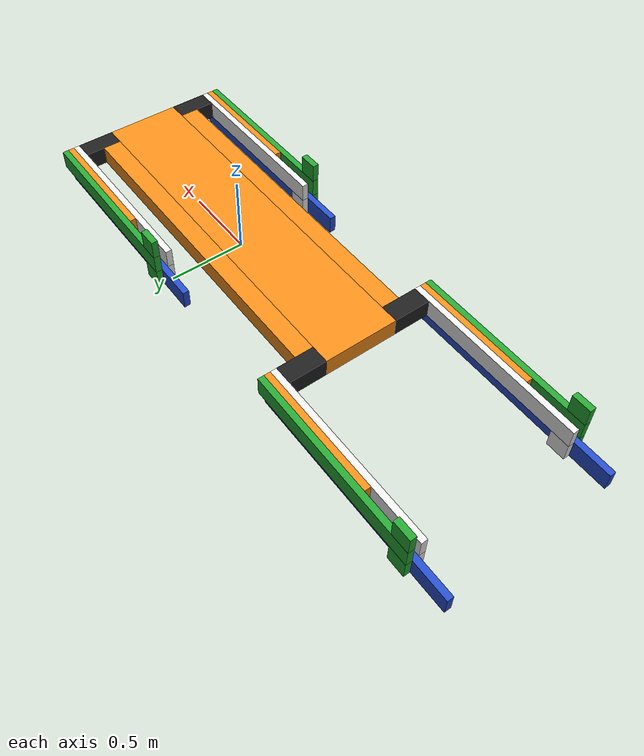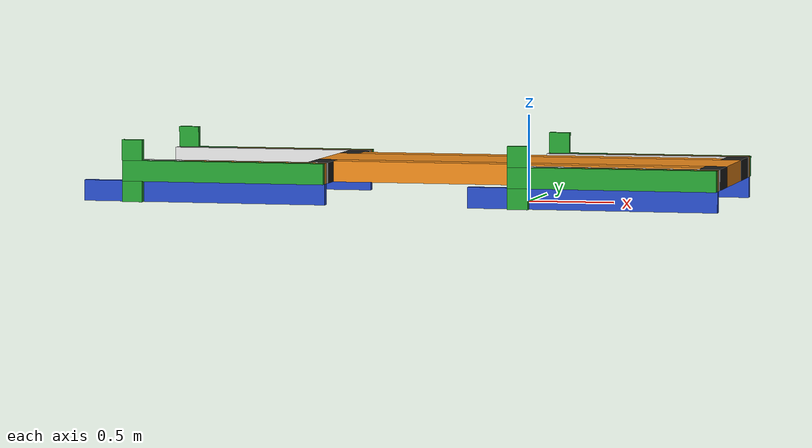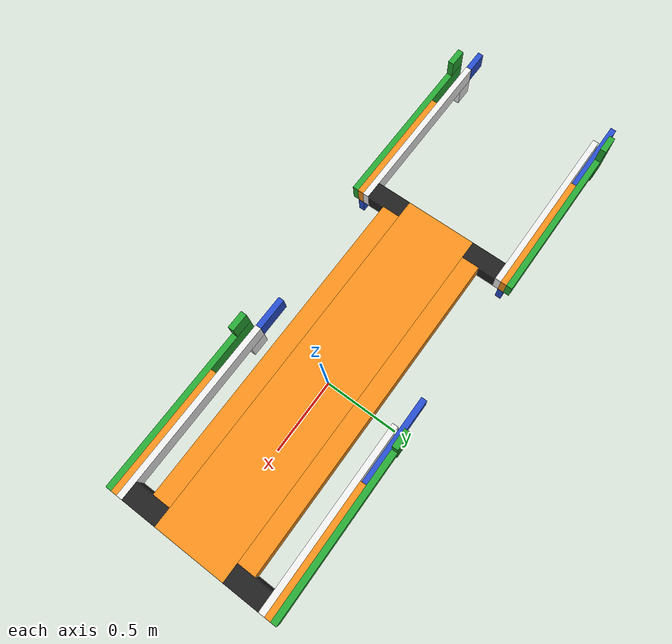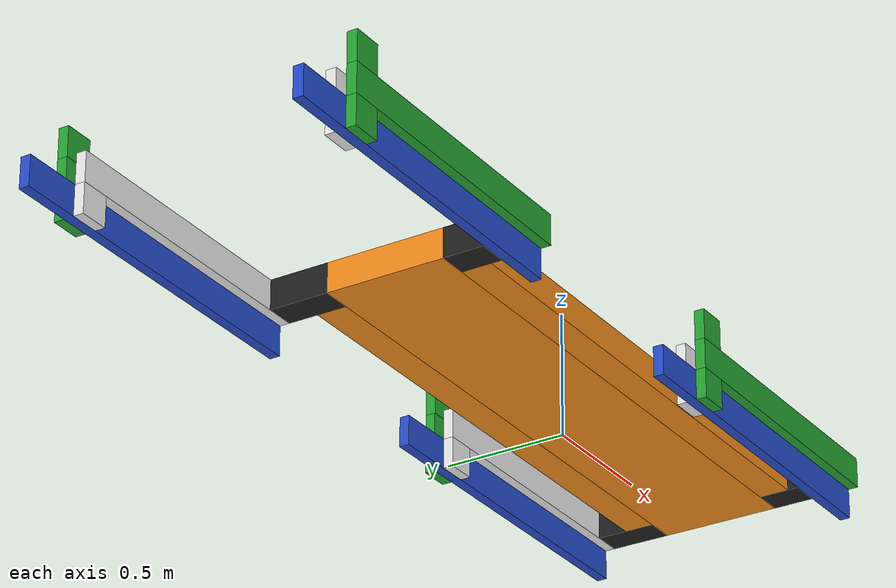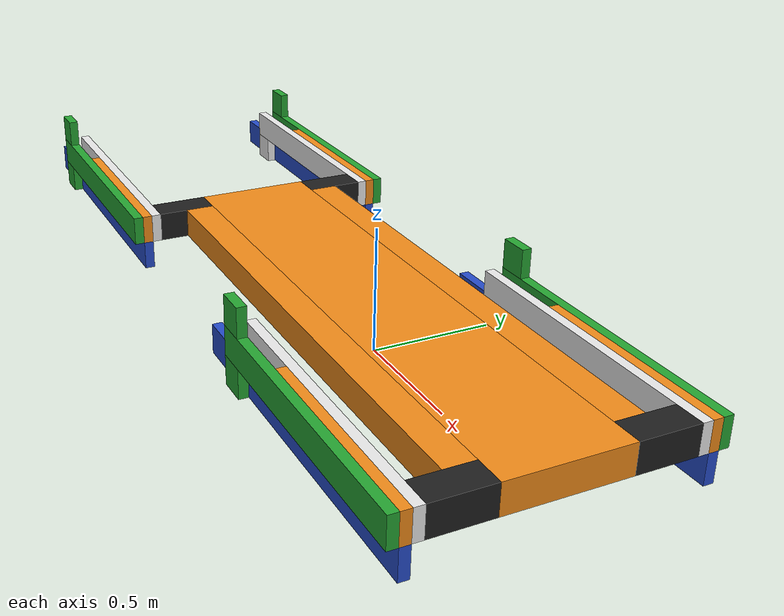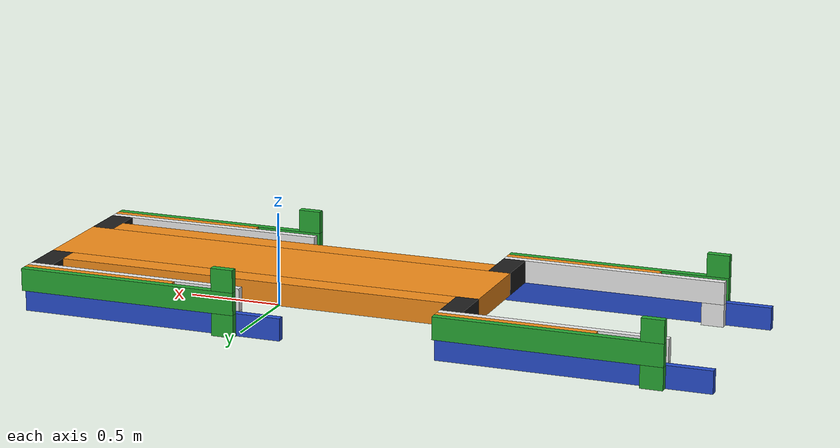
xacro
<?xml version="1.0"?>
<!--
THESE COMMANDS AUTO-GENERATE THE NECESSARY *.urdf / *.xml
rosrun xacro xacro -o my_spot.urdf my_spot.xacro
rosrun xacro xacro -o my_spot.xml my_spot.xacro
-->
<!-- Revolute-Revolute Manipulator -->
<robot name="my_spot" xmlns:xacro="http://www.ros.org/wiki/xacro">

  <!-- Import all Gazebo-customization elements, including Gazebo colors -->
  <xacro:include filename="$(find my_spot)/urdf/my_spot.gazebo" />
  <!-- Import Rviz colors -->
  <xacro:include filename="$(find my_spot)/urdf/materials.xacro" />
  <!-- Import constants -->
  <xacro:include filename="$(find my_spot)/urdf/property_variables.xacro" />
  <!-- Import leg macro -->
  <xacro:include filename="$(find my_spot)/urdf/leg.xacro" />

  <!-- Used for fixing robot to Gazebo 'base_link' -->
  <link name="world"/>

 <joint name="float_torso" type="floating">
    <parent link="world"/>
    <child link="link_torso"/>
    <origin xyz="0 0 ${z_width_lowerarm_left}" rpy="0 0 0"/>
    <calibration rising="0.0"/>
    <dynamics damping="0.0" friction="0.0"/>
    <safety_controller k_velocity="10" k_position="15" soft_lower_limit="-2.0" soft_upper_limit="0.5" />
  </joint>

  <!-- Base Link -->
  <link name="link_torso">
    <collision>
      <origin xyz="0 0 ${z_width_body/2}" rpy="0 0 0"/>
      <geometry>
	<box size="${x_width_body} ${y_width_body} ${z_width_body}"/>
      </geometry>
    </collision>

    <visual>
      <origin xyz="0 0 ${z_width_body/2}" rpy="0 0 0"/>
      <geometry>
	<box size="${x_width_body} ${y_width_body} ${z_width_body}"/>
      </geometry>
      <material name="orange"/>
    </visual>

    <inertial>
      <origin xyz="0 0 ${z_width_body/2}" rpy="0 0 0"/>
      <mass value="${mass}"/>
      <inertia
	  ixx="${mass / 12.0 * (y_width_body*y_width_body + z_width_body*z_width_body)}" ixy="0.0" ixz="0.0"
	  iyy="${mass / 12.0 * (z_width_body*z_width_body + x_width_body*x_width_body)}" iyz="0.0"
	  izz="${mass / 12.0 * (x_width_body*x_width_body + y_width_body*y_width_body)}"/>
    </inertial>
  </link>
  <link name="left_latissimus_dorsi">
    <collision>
      <origin xyz="0 0 0" rpy="0 0 0"/>
      <geometry>
	<box size="${x_width_body- z_width_body*2} ${z_width_body} ${z_width_body}"/>
      </geometry>
    </collision>

    <visual>
      <origin xyz="0 0 0" rpy="0 0 0"/>
      <geometry>
	<box size="${x_width_body- z_width_body*2} ${z_width_body} ${z_width_body}"/>
      </geometry>
      <material name="orange"/>
    </visual>

    <inertial>
      <origin xyz="0 0 0" rpy="0 0 0"/>
      <mass value="${mass}"/>
      <inertia
	  ixx="${mass / 12.0 * (y_width_body*y_width_body + z_width_body*z_width_body)}" ixy="0.0" ixz="0.0"
	  iyy="${mass / 12.0 * (z_width_body*z_width_body + x_width_body*x_width_body)}" iyz="0.0"
	  izz="${mass / 12.0 * (x_width_body*x_width_body + y_width_body*y_width_body)}"/>
    </inertial>
  </link>
  <link name="right_latissimus_dorsi">
    <collision>
      <origin xyz="0 0 0" rpy="0 0 0"/>
      <geometry>
	<box size="${x_width_body- z_width_body*2} ${z_width_body} ${z_width_body}"/>
      </geometry>
    </collision>

    <visual>
      <origin xyz="0 0 0" rpy="0 0 0"/>
      <geometry>
	<box size="${x_width_body- z_width_body*2} ${z_width_body} ${z_width_body}"/>
      </geometry>
      <material name="orange"/>
    </visual>

    <inertial>
      <origin xyz="0 0 0" rpy="0 0 0"/>
      <mass value="${mass}"/>
      <inertia
	  ixx="${mass / 12.0 * (y_width_body*y_width_body + z_width_body*z_width_body)}" ixy="0.0" ixz="0.0"
	  iyy="${mass / 12.0 * (z_width_body*z_width_body + x_width_body*x_width_body)}" iyz="0.0"
	  izz="${mass / 12.0 * (x_width_body*x_width_body + y_width_body*y_width_body)}"/>
    </inertial>
  </link>
  <joint name="joint_left_latissimus_dorsi" type="fixed">
    <parent link="link_torso"/>
    <child link="left_latissimus_dorsi"/>
    <origin xyz="0 ${ y_width_body/2 + axel_offset} ${ z_width_body - axel_offset }" rpy="0 0 0"/>
    <axis xyz="1 0 0"/>   <!-- ___________________________________AXIS -->
  </joint>
  <joint name="joint_right_latissimus_dorsi" type="fixed">
    <parent link="link_torso"/>
    <child link="right_latissimus_dorsi"/>
    <origin xyz="0 ${ -y_width_body/2 - axel_offset} ${ z_width_body - axel_offset }" rpy="0 0 0"/>
    <axis xyz="1 0 0"/>   <!-- ___________________________________AXIS -->
  </joint>

  <xacro:leg NAME_limb="left_front"  s_to_t_originX="${(x_width_body/2 - axel_offset)}"
		               s_to_t_originY="${(y_width_body/2 + axel_offset)}"
                               s_to_t_originZ="${(z_width_body - axel_offset)}"
			                flipX="1"
			                flipY="1"
			                flipZ="1"
PI="${PI}" mass="${mass}" width="${width}" x_width_body="${x_width_body}" y_width_body="${y_width_body}" z_width_body="${z_width_body}"
x_width_shoulder_left="${x_width_shoulder_left}" y_width_shoulder_left="${y_width_shoulder_left}" z_width_shoulder_left="${z_width_shoulder_left}" shoulder_roll="0" shoulder_pitch="0" shoulder_yaw="0"
x_width_upperarm_left="${x_width_upperarm_left}" y_width_upperarm_left="${y_width_upperarm_left}" z_width_upperarm_left="${z_width_upperarm_left}" upperarm_roll="0" upperarm_pitch="0" upperarm_yaw="0"
x_width_lowerarm_left="${x_width_lowerarm_left}" y_width_lowerarm_left="${y_width_lowerarm_left}" z_width_lowerarm_left="${z_width_lowerarm_left}" lowerarm_roll="0" lowerarm_pitch="0" lowerarm_yaw="0"
height1="${height1}" height2="${height2}" height3="${height3}" camera_link="${camera_link}" axel_offset="${axel_offset}" axel_offset_small="${axel_offset_small}"/>

  <xacro:leg NAME_limb="left_rear" s_to_t_originX="${REFLECT*(x_width_body/2 - axel_offset)}"
		             s_to_t_originY="${(y_width_body/2 + axel_offset)}"
                             s_to_t_originZ="${(z_width_body - axel_offset)}"
			                flipX=" 1"
			                flipY=" 1"
			                flipZ=" 1"
PI="${PI}" mass="${mass}" width="${width}" x_width_body="${x_width_body}" y_width_body="${y_width_body}" z_width_body="${z_width_body}"
x_width_shoulder_left="${x_width_shoulder_left}" y_width_shoulder_left="${y_width_shoulder_left}" z_width_shoulder_left="${z_width_shoulder_left}" shoulder_roll="0" shoulder_pitch="0" shoulder_yaw="0"
x_width_upperarm_left="${x_width_upperarm_left}" y_width_upperarm_left="${y_width_upperarm_left}" z_width_upperarm_left="${z_width_upperarm_left}" upperarm_roll="0" upperarm_pitch="0" upperarm_yaw="0"
x_width_lowerarm_left="${x_width_lowerarm_left}" y_width_lowerarm_left="${y_width_lowerarm_left}" z_width_lowerarm_left="${z_width_lowerarm_left}" lowerarm_roll="0" lowerarm_pitch="0" lowerarm_yaw="0"
height1="${height1}" height2="${height2}" height3="${height3}" camera_link="${camera_link}" axel_offset="${axel_offset}" axel_offset_small="${axel_offset_small}"/>

  <xacro:leg NAME_limb="right_front" s_to_t_originX="${(x_width_body/2 - axel_offset)}"
		               s_to_t_originY="${-1*(y_width_body/2 + axel_offset)}"
                               s_to_t_originZ="${(z_width_body - axel_offset)}"
			                flipX=" 1"
			                flipY=" 1"
			                flipZ="-1"
PI="${PI}" mass="${mass}" width="${width}" x_width_body="${x_width_body}" y_width_body="${y_width_body}" z_width_body="${z_width_body}"
x_width_shoulder_left="${x_width_shoulder_left}" y_width_shoulder_left="${y_width_shoulder_left}" z_width_shoulder_left="${z_width_shoulder_left}" shoulder_roll="${PI}" shoulder_pitch="0" shoulder_yaw="0"
x_width_upperarm_left="${x_width_upperarm_left}" y_width_upperarm_left="${y_width_upperarm_left}" z_width_upperarm_left="${z_width_upperarm_left}" upperarm_roll="0" upperarm_pitch="0" upperarm_yaw="0"
x_width_lowerarm_left="${x_width_lowerarm_left}" y_width_lowerarm_left="${y_width_lowerarm_left}" z_width_lowerarm_left="${z_width_lowerarm_left}" lowerarm_roll="0" lowerarm_pitch="0" lowerarm_yaw="0"
height1="${height1}" height2="${height2}" height3="${height3}" camera_link="${camera_link}" axel_offset="${axel_offset}" axel_offset_small="${axel_offset_small}"/>

  <xacro:leg NAME_limb="right_rear" s_to_t_originX="${REFLECT*(x_width_body/2 - axel_offset)}"
		             s_to_t_originY="${-1*(y_width_body/2 + axel_offset)}"
                             s_to_t_originZ="${(z_width_body - axel_offset)}"
			                flipX=" 1"
			                flipY=" 1"
			                flipZ="-1"
PI="${PI}" mass="${mass}" width="${width}" x_width_body="${x_width_body}" y_width_body="${y_width_body}" z_width_body="${z_width_body}"
x_width_shoulder_left="${x_width_shoulder_left}" y_width_shoulder_left="${y_width_shoulder_left}" z_width_shoulder_left="${z_width_shoulder_left}" shoulder_roll="${PI}" shoulder_pitch="0" shoulder_yaw="0"
x_width_upperarm_left="${x_width_upperarm_left}" y_width_upperarm_left="${y_width_upperarm_left}" z_width_upperarm_left="${z_width_upperarm_left}" upperarm_roll="0" upperarm_pitch="0" upperarm_yaw="0"
x_width_lowerarm_left="${x_width_lowerarm_left}" y_width_lowerarm_left="${y_width_lowerarm_left}" z_width_lowerarm_left="${z_width_lowerarm_left}" lowerarm_roll="0" lowerarm_pitch="0" lowerarm_yaw="0"
height1="${height1}" height2="${height2}" height3="${height3}" camera_link="${camera_link}" axel_offset="${axel_offset}" axel_offset_small="${axel_offset_small}"/>

</robot>

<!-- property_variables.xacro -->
<!--
THESE COMMANDS AUTO-GENERATE THE NECESSARY *.urdf / *.xml
rosrun xacro xacro -o my_spot.urdf my_spot.xacro
rosrun xacro xacro -o my_spot.xml my_spot.xacro
-->
<!-- Revolute-Revolute Manipulator -->
<robot name="my_spot" xmlns:xacro="http://www.ros.org/wiki/xacro" >

  <!-- Constants for robot dimensions -->
  <xacro:property name="REFLECT" value="-1"/>
  <xacro:property name="PI" value="3.1415926535897931"/>
  <xacro:property name="mass" value="1" /> <!-- arbitrary value for mass -->
  <xacro:property name="width" value="0.12" /> <!-- Square dimensions (widthxwidth) of beams -->
  <xacro:property name="x_width_body" value="2.4" /> <!-- Square dimensions (widthxwidth) of beams -->
  <xacro:property name="y_width_body" value="0.48" /> <!-- Square dimensions (widthxwidth) of beams -->
  <xacro:property name="z_width_body" value="0.12" /> <!-- Square dimensions (widthxwidth) of beams -->

  <xacro:property name="x_width_shoulder_left" value="0.12" /> <!-- Square dimensions (widthxwidth) of beams -->
  <xacro:property name="y_width_shoulder_left" value="0.24" /> <!-- Square dimensions (widthxwidth) of beams -->
  <xacro:property name="z_width_shoulder_left" value="0.12" /> <!-- Square dimensions (widthxwidth) of beams -->

  <xacro:property name="x_width_upperarm_left" value="1.2" /> <!-- Square dimensions (widthxwidth) of beams -->
  <xacro:property name="y_width_upperarm_left" value=".04" /> <!-- Square dimensions (widthxwidth) of beams -->
  <xacro:property name="z_width_upperarm_left" value="0.12" /> <!-- Square dimensions (widthxwidth) of beams -->

  <xacro:property name="x_width_lowerarm_left" value="1.2" /> <!-- Square dimensions (widthxwidth) of beams -->
  <xacro:property name="y_width_lowerarm_left" value=".04" /> <!-- Square dimensions (widthxwidth) of beams -->
  <xacro:property name="z_width_lowerarm_left" value=".12" /> <!-- Square dimensions (widthxwidth) of beams -->

  <xacro:property name="height1" value="2.4" /> <!-- Link 1 -->
  <xacro:property name="height2" value="1.2" /> <!-- Link 2 -->
  <xacro:property name="height3" value="1.2" /> <!-- Link 3 -->
  <xacro:property name="camera_link" value="0.05" /> <!-- Size of square 'camera' box -->
  <xacro:property name="axel_offset" value="${z_width_lowerarm_left/2}" /> <!-- Space btw top of beam and the each joint -->
  <xacro:property name="axel_offset_small" value="${y_width_upperarm_left/2}" /> <!-- Space btw top of beam and the each joint -->

</robot>

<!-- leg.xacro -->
<robot name="my_spot" xmlns:xacro="http://www.ros.org/wiki/xacro">

  <!--
					    shoulder to torso == s_to_t_origin*
                          use: 1 to NOT FLIP, and -1 YES FLIP == geometry_flip*
  -->

  <xacro:macro name="leg" params="NAME_limb s_to_t_originX s_to_t_originY s_to_t_originZ
				                     flipX          flipY          flipZ
	  PI mass width x_width_body y_width_body z_width_body
	  x_width_shoulder_left y_width_shoulder_left z_width_shoulder_left shoulder_roll shoulder_pitch shoulder_yaw
	  x_width_upperarm_left y_width_upperarm_left z_width_upperarm_left upperarm_roll upperarm_pitch upperarm_yaw
	  x_width_lowerarm_left y_width_lowerarm_left z_width_lowerarm_left lowerarm_roll lowerarm_pitch lowerarm_yaw
	  height1 height2 height3 camera_link axel_offset axel_offset_small ">

  <!-- ALSO EDIT
               *.xacro
               *.gazebo
       *_control.launch
       *_control.yaml
       *move_robot.cpp
   -->

  <xacro:property name="upperarm_inertia">
    <inertial>
      <origin xyz="${-x_width_upperarm_left/2 + axel_offset*6  } ${y_width_upperarm_left+axel_offset_small} 0" rpy="0 0 0"/>
      <mass value="${mass}"/>
      <inertia
	  ixx="${mass / 12.0 * (y_width_upperarm_left*y_width_upperarm_left + z_width_upperarm_left*z_width_upperarm_left)}" ixy="0.0" ixz="0.0"
	  iyy="${mass / 12.0 * (z_width_upperarm_left*z_width_upperarm_left + x_width_upperarm_left*x_width_upperarm_left)}" iyz="0.0"
	  izz="${mass / 12.0 * (x_width_upperarm_left*x_width_upperarm_left + y_width_upperarm_left*y_width_upperarm_left)}"/>
    </inertial>
  </xacro:property>

  <xacro:property name="forearm_geometry">
      <origin xyz="${x_width_lowerarm_left/2-axel_offset*3} 0 ${-z_width_lowerarm_left/2 + axel_offset}" rpy="0 0 0"/>
      <geometry>
	<box size="${x_width_lowerarm_left + axel_offset*4 } ${y_width_lowerarm_left} ${z_width_lowerarm_left}"/>
      </geometry>
  </xacro:property>

  <!-- Middle Link shoulder -->
  <link name="link2_${NAME_limb}" >
    <collision>
      <origin xyz="0 ${x_width_shoulder_left/2} ${z_width_shoulder_left/2 - axel_offset}" rpy="0 0 0"/>
      <geometry>
	<box size="${x_width_shoulder_left} ${y_width_shoulder_left} ${z_width_shoulder_left}"/>
      </geometry>
    </collision>

    <visual>
      <origin xyz="0 ${x_width_shoulder_left/2} ${z_width_shoulder_left/2 - axel_offset}" rpy="0 0 0"/>
      <geometry>
	<box size="${x_width_shoulder_left} ${y_width_shoulder_left} ${z_width_shoulder_left}"/>
      </geometry>
      <material name="black"/>
    </visual>

    <inertial>
      <origin xyz="0 ${x_width_shoulder_left/2} ${z_width_shoulder_left/2 - axel_offset}" rpy="0 0 0"/>
      <mass value="${mass}"/>
      <inertia
	  ixx="${mass / 12.0 * (y_width_shoulder_left*y_width_shoulder_left + z_width_shoulder_left*z_width_shoulder_left)}" ixy="0.0" ixz="0.0"
	  iyy="${mass / 12.0 * (z_width_shoulder_left*z_width_shoulder_left + x_width_shoulder_left*x_width_shoulder_left)}" iyz="0.0"
	  izz="${mass / 12.0 * (x_width_shoulder_left*x_width_shoulder_left + y_width_shoulder_left*y_width_shoulder_left)}"/>
    </inertial>
  </link>

  <!-- UPPERARM Link inner- ->-->
  <link name="link3_inner_${NAME_limb}">
    <collision>
      <origin xyz="0 0 0" rpy="0 0 0"/>
      <geometry>
	<box size="${x_width_upperarm_left} ${y_width_upperarm_left} ${z_width_upperarm_left}"/>
      </geometry>
    </collision>

    <visual>
      <origin xyz="0 0 0" rpy="0 0 0"/>
      <geometry>
	<box size="${x_width_upperarm_left} ${y_width_upperarm_left} ${z_width_upperarm_left}"/>
      </geometry>
      <material name="white"/>
    </visual>
    <xacro:insert_block name="upperarm_inertia" />
  </link>

 <!-- UPPERARM Link inner BRACE-->
  <link name="link3_inner_brace_${NAME_limb}">
    <collision>
      <origin xyz="0 0 0" rpy="0 0 0"/>
      <geometry>
	<box size="${z_width_upperarm_left} ${y_width_upperarm_left} ${z_width_upperarm_left}"/>
      </geometry>
    </collision>

    <visual>
      <origin xyz="0 0 0" rpy="0 0 0"/>
      <geometry>
	<box size="${z_width_upperarm_left} ${y_width_upperarm_left} ${z_width_upperarm_left}"/>
      </geometry>
      <material name="white"/>
    </visual>
    <xacro:insert_block name="upperarm_inertia" />
  </link>

  <!-- UPPERARM Link middle-->
  <link name="link3_middle_${NAME_limb}">
    <collision>
      <origin xyz="${-x_width_upperarm_left/2 + axel_offset*4 } ${y_width_upperarm_left+axel_offset_small} 0" rpy="0 0 0"/>
      <geometry>
	<box size="${x_width_upperarm_left - axel_offset*6 } ${y_width_upperarm_left} ${z_width_upperarm_left}"/>
      </geometry>
    </collision>

    <visual>
      <origin xyz="${-x_width_upperarm_left/2 + axel_offset*4 } ${y_width_upperarm_left+axel_offset_small} 0" rpy="0 0 0"/>
      <geometry>
	<box size="${x_width_upperarm_left - axel_offset*6 } ${y_width_upperarm_left} ${z_width_upperarm_left}"/>
      </geometry>
      <material name="orange"/>
    </visual>
    <xacro:insert_block name="upperarm_inertia" />
  </link>
  <!-- UPPERARM Link outer-->
  <link name="link3_outer_${NAME_limb}">
    <collision>
      <origin xyz="0 0 0" rpy="0 0 0"/>
      <geometry>
	<box size="${x_width_upperarm_left} ${y_width_upperarm_left} ${z_width_upperarm_left}"/>
      </geometry>
    </collision>

    <visual>
      <origin xyz="0 0 0" rpy="0 0 0"/>
      <geometry>
	<box size="${x_width_upperarm_left} ${y_width_upperarm_left} ${z_width_upperarm_left}"/>
      </geometry>
      <material name="green"/>
    </visual>
    <xacro:insert_block name="upperarm_inertia" />
  </link>

 <!-- UPPERARM Link outer BRACE-->
  <link name="link3_outer_brace_${NAME_limb}">
    <collision>
      <origin xyz="0 0 0" rpy="0 0 0"/>
      <geometry>
	<box size="${z_width_upperarm_left} ${y_width_upperarm_left} ${z_width_upperarm_left}"/>
      </geometry>
    </collision>

    <visual>
      <origin xyz="0 0 0" rpy="0 0 0"/>
      <geometry>
	<box size="${z_width_upperarm_left} ${y_width_upperarm_left} ${z_width_upperarm_left}"/>
      </geometry>
      <material name="green"/>
    </visual>
    <xacro:insert_block name="upperarm_inertia" />
  </link>

 <!-- UPPERARM Link outer x-->
  <link name="link3_outer_x_${NAME_limb}">
    <collision>
      <origin xyz="0 0 0" rpy="0 0 0"/>
      <geometry>
	<box size="${z_width_upperarm_left} ${y_width_upperarm_left} ${z_width_upperarm_left}"/>
      </geometry>
    </collision>

    <visual>
      <origin xyz="0 0 0" rpy="0 0 0"/>
      <geometry>
	<box size="${z_width_upperarm_left} ${y_width_upperarm_left} ${z_width_upperarm_left}"/>
      </geometry>
      <material name="green"/>
    </visual>
    <xacro:insert_block name="upperarm_inertia" />
  </link>

  <!-- FOREARM Link -->
  <link name="link4_${NAME_limb}">
    <collision>
    <xacro:insert_block name="forearm_geometry" />
    </collision>

    <visual>
    <xacro:insert_block name="forearm_geometry" />
      <material name="blue"/>
    </visual>

    <inertial>
      <origin xyz="${x_width_lowerarm_left/2-axel_offset*3} 0 ${-z_width_lowerarm_left/2 + axel_offset}" rpy="0 0 0"/>
      <mass value="${mass}"/>
      <inertia
	  ixx="${mass / 12.0 * (y_width_lowerarm_left*y_width_lowerarm_left + z_width_lowerarm_left*z_width_lowerarm_left)}" ixy="0.0" ixz="0.0"
	  iyy="${mass / 12.0 * (z_width_lowerarm_left*z_width_lowerarm_left + x_width_lowerarm_left*x_width_lowerarm_left)}" iyz="0.0"
	  izz="${mass / 12.0 * (x_width_lowerarm_left*x_width_lowerarm_left + y_width_lowerarm_left*y_width_lowerarm_left)}"/>
    </inertial>
  </link>

  <!-- Middle joint ( shoulder to torso ) -->
  <joint name="joint1_${NAME_limb}" type="continuous">
    <parent link="link_torso"/>
    <child link="link2_${NAME_limb}"/>
    <origin xyz="${s_to_t_originX} ${s_to_t_originY} ${s_to_t_originZ}" rpy="${shoulder_roll} ${shoulder_pitch} ${shoulder_yaw}"/>
    <axis xyz="1 0 0"/>   <!-- ___________________________________AXIS -->
    <dynamics damping="4.2" friction="1"/>
  </joint>
  <!-- Middle joint ( upperarm to shoulder ) -->
  <joint name="joint2_${NAME_limb}" type="continuous">
    <parent link="link2_${NAME_limb}"/>
    <child link="link3_middle_${NAME_limb}"/>
    <origin xyz="0 ${flipY*(y_width_shoulder_left/2+axel_offset_small*3)} 0" rpy="${upperarm_roll} ${upperarm_pitch} ${upperarm_yaw}"/>
    <axis xyz="0 1 0"/>     <!-- ___________________________________AXIS -->
    <dynamics damping="4.2"/>
  </joint>

  <!-- UPPERARM Link inner- ->-->

  <joint name="joint3_inner_${NAME_limb}" type="fixed">
    <parent link="link3_middle_${NAME_limb}"/>
    <child link="link3_inner_${NAME_limb}"/>
    <origin xyz="${flipX*(-x_width_upperarm_left/2 + axel_offset ) } ${ flipY*(axel_offset_small ) } 0" rpy="0 0 0"/>
    <axis xyz="0 1 0"/>     <!-- ___________________________________AXIS -->
    <dynamics damping="4.2"/>
  </joint>
 <!-- UPPERARM joint inner BRACE-->

  <joint name="joint3_inner_brace_${NAME_limb}" type="fixed">
    <parent link="link3_inner_${NAME_limb}"/>
    <child link="link3_inner_brace_${NAME_limb}"/>
    <origin xyz="${flipX*(-x_width_upperarm_left/2 + axel_offset ) } 0 ${ flipZ*(-z_width_upperarm_left) }" rpy="0 0 0"/>
    <axis xyz="0 1 0"/>
    <dynamics damping="4.2"/>
  </joint>
  <!-- UPPERARM Link middle-->

  <!-- UPPERARM joint outer-->
  <joint name="joint3_outer_${NAME_limb}" type="fixed">
    <parent link="link3_middle_${NAME_limb}"/>
    <child link="link3_outer_${NAME_limb}"/>
    <origin xyz="${flipX*(-x_width_upperarm_left/2 + axel_offset ) } ${flipY*( y_width_upperarm_left*2 + axel_offset_small) } 0" rpy="0 0 0"/>
    <axis xyz="0 1 0"/>
    <dynamics damping="4.2"/>
  </joint>
 <!-- UPPERARM joint outer BRACE-->
  <joint name="joint3_outer_brace_${NAME_limb}" type="fixed">
    <parent link="link3_outer_${NAME_limb}"/>
    <child link="link3_outer_brace_${NAME_limb}"/>
    <origin xyz="${flipX*(-x_width_upperarm_left/2 + axel_offset ) } 0 ${flipZ*( -z_width_upperarm_left ) }" rpy="0 0 0"/>
    <axis xyz="0 1 0"/>
    <dynamics damping="4.2"/>
  </joint>
 <!-- UPPERARM joint outer x-->
  <joint name="joint3_outer_x_${NAME_limb}" type="fixed">
    <parent link="link3_outer_${NAME_limb}"/>
    <child link="link3_outer_x_${NAME_limb}"/>
    <origin xyz="${flipX*(-x_width_upperarm_left/2 + axel_offset ) } 0 ${ flipZ*(z_width_upperarm_left) }" rpy="0 0 0"/>
    <axis xyz="0 1 0"/>
    <dynamics damping="4.2"/>
  </joint>

  <!-- FOREARM joint -->
  <joint name="joint3_${NAME_limb}" type="continuous">
    <parent link="link3_middle_${NAME_limb}"/>
    <child link="link4_${NAME_limb}"/>
    <origin xyz="${ flipX*(-x_width_upperarm_left + axel_offset*2 )} ${ flipY*(y_width_upperarm_left/2 + axel_offset_small*2 )} ${flipZ*(z_width_upperarm_left - axel_offset*4)}" rpy="${lowerarm_roll} ${lowerarm_pitch} ${lowerarm_yaw}"/>
    <axis xyz="0 1 0"/>     <!-- ___________________________________AXIS -->
    <dynamics damping="4.2"/>
  </joint>

  <transmission name="tran1">
    <type>transmission_interface/SimpleTransmission</type>
    <joint name="joint1_${NAME_limb}">
      <hardwareInterface>hardware_interface/EffortJointInterface</hardwareInterface>
    </joint>
    <actuator name="motor1">
      <hardwareInterface>hardware_interface/EffortJointInterface</hardwareInterface>
      <mechanicalReduction>1</mechanicalReduction>
    </actuator>
  </transmission>

  <transmission name="tran2">
    <type>transmission_interface/SimpleTransmission</type>
    <joint name="joint2_${NAME_limb}">
      <hardwareInterface>hardware_interface/EffortJointInterface</hardwareInterface>
    </joint>
    <actuator name="motor2">
      <hardwareInterface>hardware_interface/EffortJointInterface</hardwareInterface>
      <mechanicalReduction>1</mechanicalReduction>
    </actuator>
  </transmission>
  <transmission name="tran3">
    <type>transmission_interface/SimpleTransmission</type>
    <joint name="joint3_${NAME_limb}">
      <hardwareInterface>hardware_interface/EffortJointInterface</hardwareInterface>
    </joint>
    <actuator name="motor3">
      <hardwareInterface>hardware_interface/EffortJointInterface</hardwareInterface>
      <mechanicalReduction>1</mechanicalReduction>
    </actuator>
  </transmission>

  <!-- Link2 -->
  <gazebo reference="link2_${NAME_limb}">
    <mu1>10</mu1>
    <mu2>1</mu2>
    <material>Gazebo/Black</material>
  </gazebo>

  <!-- Link3_inner -->
  <gazebo reference="link3_inner_${NAME_limb}">
    <mu1>0.2</mu1>
    <mu2>0.2</mu2>
    <material>Gazebo/White</material>
  </gazebo>
  <!-- Link3_inner_brace -->
  <gazebo reference="link3_inner_brace_${NAME_limb}">
    <mu1>0.2</mu1>
    <mu2>0.2</mu2>
    <material>Gazebo/White</material>
  </gazebo>
  <!-- Link3 -->
  <gazebo reference="link3_middle_${NAME_limb}">
    <mu1>0.2</mu1>
    <mu2>0.2</mu2>
    <material>Gazebo/Orange</material>
  </gazebo>
  <!-- Link3_outer -->
  <gazebo reference="link3_outer_${NAME_limb}">
    <mu1>0.2</mu1>
    <mu2>0.2</mu2>
    <material>Gazebo/Green</material>
  </gazebo>
  <!-- Link3_outer_brace -->
  <gazebo reference="link3_outer_brace_${NAME_limb}">
    <mu1>0.2</mu1>
    <mu2>0.2</mu2>
    <material>Gazebo/Green</material>
  </gazebo>
  <!-- Link3_outer_x -->
  <gazebo reference="link3_outer_x_${NAME_limb}">
    <mu1>0.2</mu1>
    <mu2>0.2</mu2>
    <material>Gazebo/Green</material>
  </gazebo>

  <!-- Link4 -->
  <gazebo reference="link4_${NAME_limb}">
    <mu1>0.2</mu1>
    <mu2>0.2</mu2>
    <material>Gazebo/Blue</material>
  </gazebo>
  </xacro:macro>

</robot>
